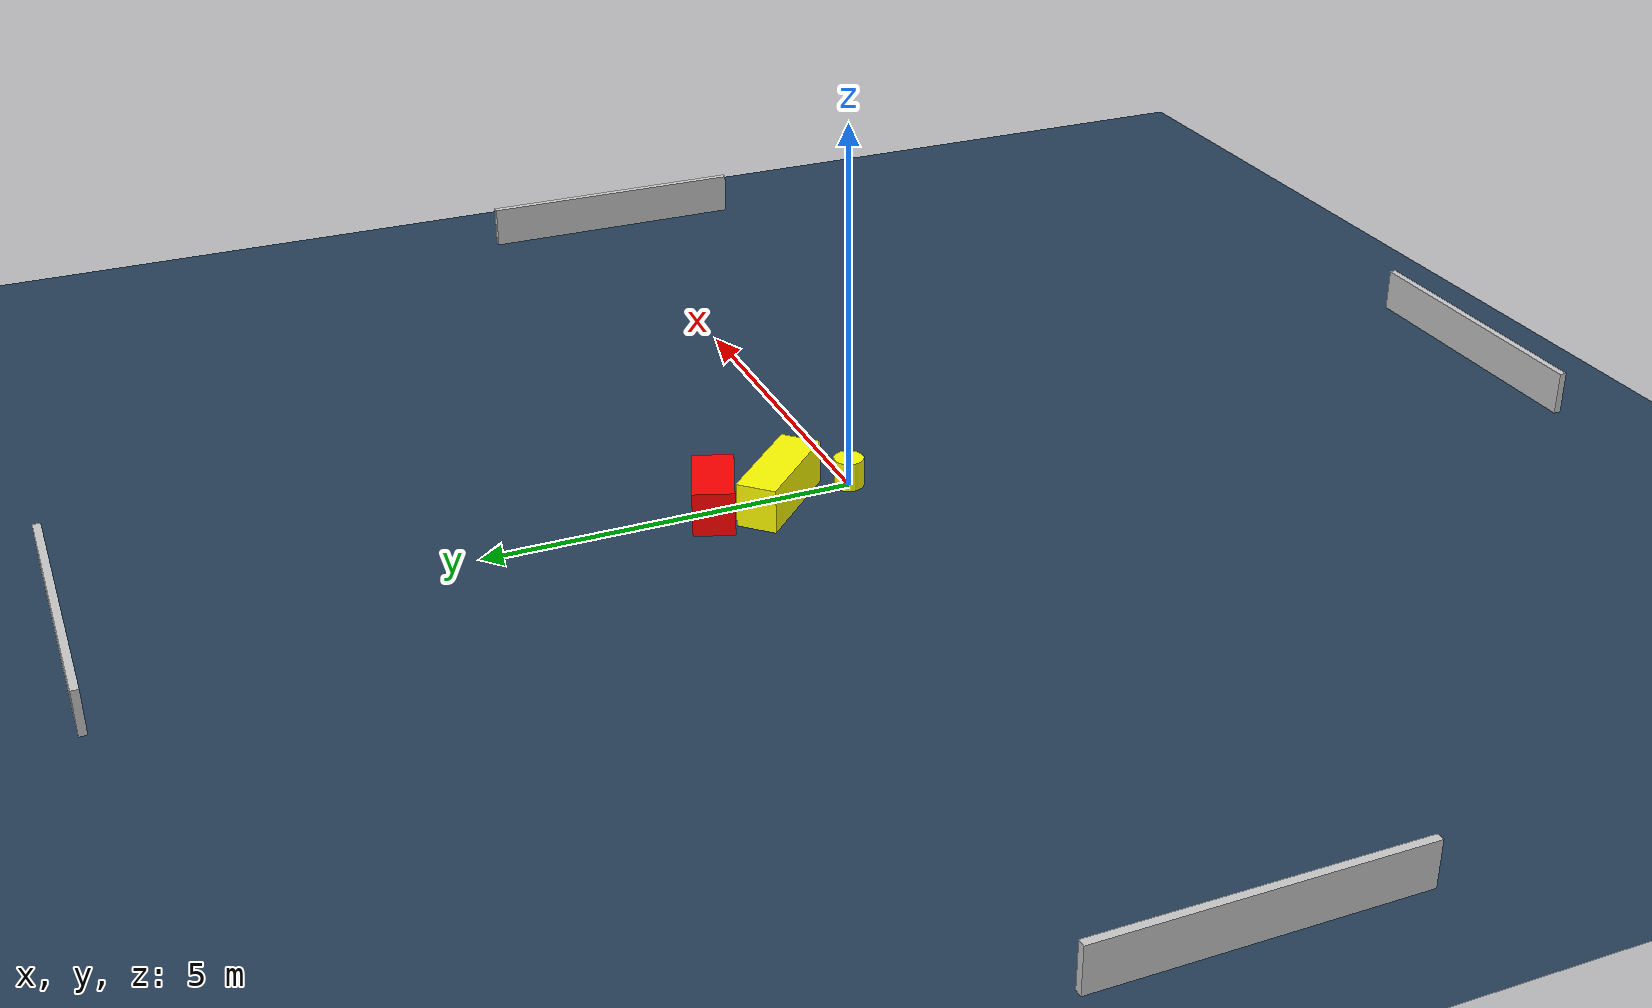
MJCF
<?xml version="1.0" ?>
<mujoco model="generated_environment">
  <option timestep="0.01" integrator="RK4" cone="elliptic"/>
  <default>
    <geom density="1"/>
  </default>
  <asset>
    <texture builtin="gradient" height="3072" name="skybox" rgb1="0.3 0.5 0.7" rgb2="0 0 0" type="skybox" width="512"/>
    <texture builtin="checker" height="300" name="groundplane" rgb1="0.2 0.3 0.4" rgb2="0.1 0.2 0.3" type="2d" width="300"/>
    <material name="groundplane" reflectance="0.2" texrepeat="5 5" texture="groundplane"/>
  </asset>
  <worldbody>
    <light dir="0 0 -1" directional="true" pos="0 0 1.5"/>
    <geom condim="3" friction="0.5 0.005 0.001" material="groundplane" name="floor" pos="0 0 0" size="0 0 0.05" type="plane"/>
    <body name="walls">
      <geom name="wall_1" condim="4" pos="-10.0 0.0 0.3" rgba="0.800000011920929 0.800000011920929 0.800000011920929 1.0" size="0.05 2.0 0.3" type="box"/>
      <geom name="wall_2" condim="4" pos="10.0 0.0 0.3" rgba="0.800000011920929 0.800000011920929 0.800000011920929 1.0" size="0.05 2.0 0.3" type="box"/>
      <geom name="wall_3" condim="4" pos="0.0 -10.0 0.3" rgba="0.800000011920929 0.800000011920929 0.800000011920929 1.0" size="2.0 0.05 0.3" type="box"/>
      <geom name="wall_4" condim="4" pos="0.0 10.0 0.3" rgba="0.800000011920929 0.800000011920929 0.800000011920929 1.0" size="2.0 0.05 0.3" type="box"/>
    </body>
    <body name="robot">
      <joint name="joint_x" type="slide" pos="0 0 0" axis="1 0 0"/>
      <joint name="joint_y" type="slide" pos="0 0 0" axis="0 1 0"/>
      <geom name="robot" type="cylinder" pos="0.0 0.0 0.2" size="0.2 0.2 0.0" mass="5.0" friction="1.0 0.005 0.0001" condim="4" rgba="1.0 1.0 0.0 1.0"/>
    </body>
    <body name="obstacle_1_movable">
      <geom name="obstacle_1_movable" condim="4" pos="-0.11040476322387739 1.0352105670041185 0.3" euler="0 0 315.36601593338156" friction="0.0 0.005 0.001" rgba="1.0 1.0 0.0 1.0" size="0.7486310633257649 0.2732614696079102 0.3" type="box" mass="0.1"/>
      <joint type="free"/>
    </body>
    <body name="obstacle_2_static">
      <geom name="obstacle_2_static" condim="4" pos="-0.08009875619853697 1.9282864838368887 0.3" euler="0 0 340.01904154472396" friction="0.0 0.005 0.001" rgba="1.0 0.0 0.0 1.0" size="0.5368442536838582 0.27320561315072284 0.3" type="box"/>
    </body>
  </worldbody>
  <actuator>
    <motor name="actuator_x" joint="joint_x" gear="1" ctrlrange="-1 1"/>
    <motor name="actuator_y" joint="joint_y" gear="1" ctrlrange="-1 1"/>
  </actuator>
</mujoco>
